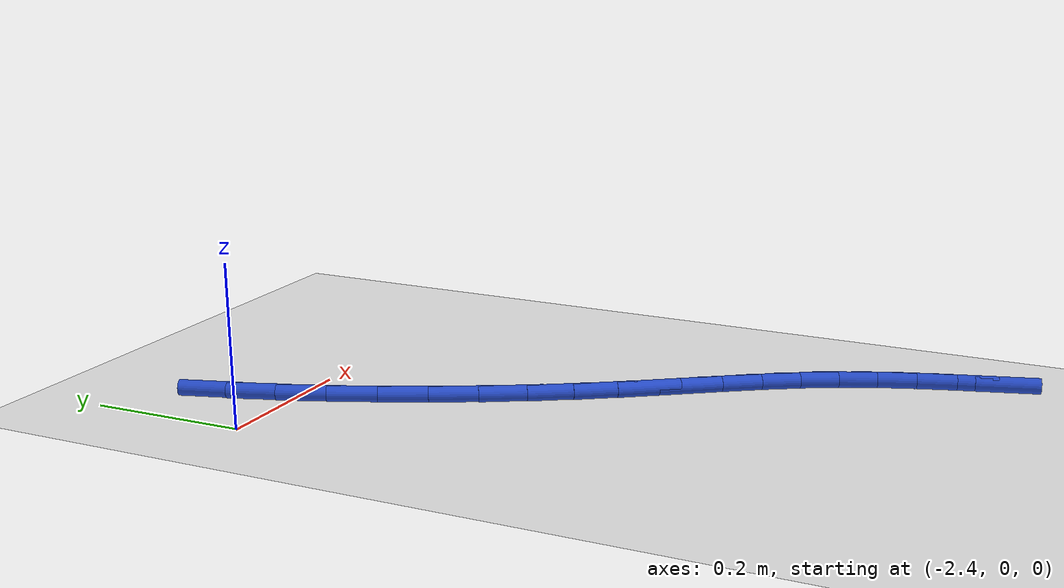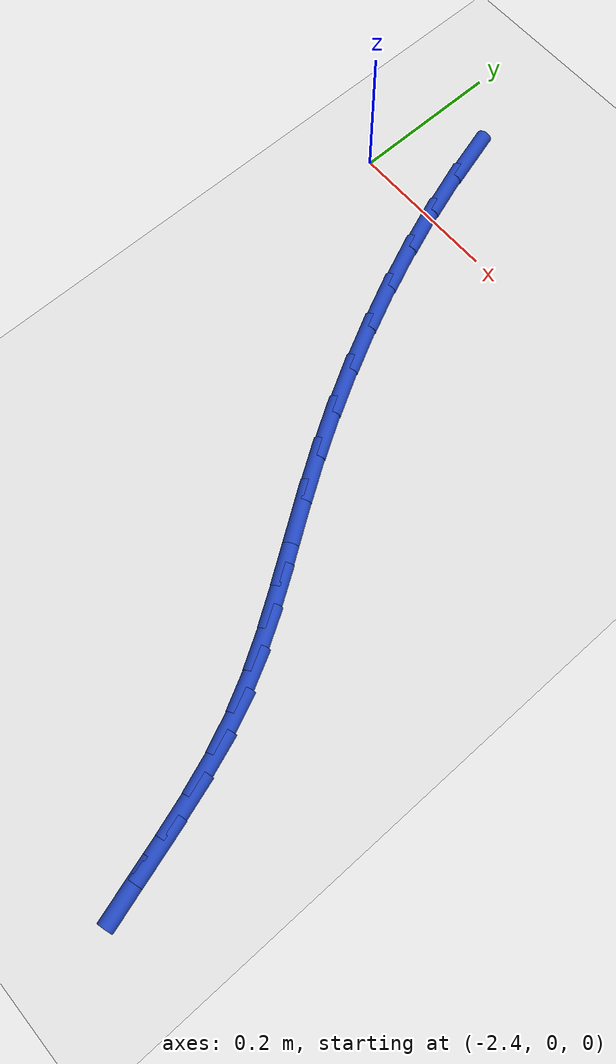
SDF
<sdf version="1.6">
 <world name="default">
  <model name="ground_plane">
   <static>1</static>
   <link name="link">
    <collision name="collision">
     <geometry><plane><normal>0 0 1</normal><size>100 100</size></plane></geometry>
     <surface><friction><ode><mu>100</mu><mu2>50</mu2></ode></friction></surface>
    </collision>
    <visual name="visual">
     <cast_shadows>0</cast_shadows>
     <geometry><plane><normal>0 0 1</normal><size>100 100</size></plane></geometry>
     <material>
      <script><uri>file://media/materials/scripts/gazebo.material</uri><name>Gazebo/WhiteGlow</name></script>
     </material>
    </visual>
   </link>
  </model>
  <model name="line">
   <link name="link_78">
    <pose>-2.315992216801766 0.09763971651295889 0.01 0 1.57 -1.282649880915142</pose>
    <collision name="collision">
     <geometry><cylinder><radius>0.01</radius><length>0.08</length></cylinder></geometry>
    </collision>
    <visual name="visual">
     <material>
      <script><name>Gazebo/Blue</name><uri>file://media/materials/scripts/gazebo.material</uri></script>
     </material>
     <geometry><cylinder><radius>0.01</radius><length>0.08</length></cylinder></geometry>
    </visual>
   </link>
   <link name="link_79">
    <pose>-2.2985466977391553 0.03878075402477239 0.01 0 1.57 -1.2389794649873294</pose>
    <collision name="collision">
     <geometry><cylinder><radius>0.01</radius><length>0.08</length></cylinder></geometry>
    </collision>
    <visual name="visual">
     <material>
      <script><name>Gazebo/Blue</name><uri>file://media/materials/scripts/gazebo.material</uri></script>
     </material>
     <geometry><cylinder><radius>0.01</radius><length>0.08</length></cylinder></geometry>
    </visual>
   </link>
   <link name="link_80">
    <pose>-2.278259995821694 -0.020097027060395928 0.01 0 1.57 -1.1991921112278094</pose>
    <collision name="collision">
     <geometry><cylinder><radius>0.01</radius><length>0.08</length></cylinder></geometry>
    </collision>
    <visual name="visual">
     <material>
      <script><name>Gazebo/Blue</name><uri>file://media/materials/scripts/gazebo.material</uri></script>
     </material>
     <geometry><cylinder><radius>0.01</radius><length>0.08</length></cylinder></geometry>
    </visual>
   </link>
   <link name="link_81">
    <pose>-2.2555002795911108 -0.07849872128670919 0.01 0 1.57 -1.1622121600459072</pose>
    <collision name="collision">
     <geometry><cylinder><radius>0.01</radius><length>0.08</length></cylinder></geometry>
    </collision>
    <visual name="visual">
     <material>
      <script><name>Gazebo/Blue</name><uri>file://media/materials/scripts/gazebo.material</uri></script>
     </material>
     <geometry><cylinder><radius>0.01</radius><length>0.08</length></cylinder></geometry>
    </visual>
   </link>
   <link name="link_82">
    <pose>-2.230635717589138 -0.13592942319832751 0.01 0 1.57 -1.1270862241740904</pose>
    <collision name="collision">
     <geometry><cylinder><radius>0.01</radius><length>0.08</length></cylinder></geometry>
    </collision>
    <visual name="visual">
     <material>
      <script><name>Gazebo/Blue</name><uri>file://media/materials/scripts/gazebo.material</uri></script>
     </material>
     <geometry><cylinder><radius>0.01</radius><length>0.08</length></cylinder></geometry>
    </visual>
   </link>
   <link name="link_83">
    <pose>-2.2040344783575043 -0.1918942273394108 0.01 0 1.57 -1.0929157698981213</pose>
    <collision name="collision">
     <geometry><cylinder><radius>0.01</radius><length>0.08</length></cylinder></geometry>
    </collision>
    <visual name="visual">
     <material>
      <script><name>Gazebo/Blue</name><uri>file://media/materials/scripts/gazebo.material</uri></script>
     </material>
     <geometry><cylinder><radius>0.01</radius><length>0.08</length></cylinder></geometry>
    </visual>
   </link>
   <link name="link_84">
    <pose>-2.176064730437942 -0.24589822825412228 0.01 0 1.57 -1.0587875387089907</pose>
    <collision name="collision">
     <geometry><cylinder><radius>0.01</radius><length>0.08</length></cylinder></geometry>
    </collision>
    <visual name="visual">
     <material>
      <script><name>Gazebo/Blue</name><uri>file://media/materials/scripts/gazebo.material</uri></script>
     </material>
     <geometry><cylinder><radius>0.01</radius><length>0.08</length></cylinder></geometry>
    </visual>
   </link>
   <link name="link_85">
    <pose>-2.1470946423721804 -0.29744652048662107 0.01 0 1.57 -1.023728122854892</pose>
    <collision name="collision">
     <geometry><cylinder><radius>0.01</radius><length>0.08</length></cylinder></geometry>
    </collision>
    <visual name="visual">
     <material>
      <script><name>Gazebo/Blue</name><uri>file://media/materials/scripts/gazebo.material</uri></script>
     </material>
     <geometry><cylinder><radius>0.01</radius><length>0.08</length></cylinder></geometry>
    </visual>
   </link>
   <link name="link_86">
    <pose>-2.117492867569388 -0.34604743245702063 0.01 0 1.57 -0.9917924505949886</pose>
    <collision name="collision">
     <geometry><cylinder><radius>0.01</radius><length>0.08</length></cylinder></geometry>
    </collision>
    <visual name="visual">
     <material>
      <script><name>Gazebo/Blue</name><uri>file://media/materials/scripts/gazebo.material</uri></script>
     </material>
     <geometry><cylinder><radius>0.01</radius><length>0.08</length></cylinder></geometry>
    </visual>
   </link>
   <link name="link_87">
    <pose>-2.0876915712131496 -0.3916328912522365 0.01 0 1.57 -0.974098748056014</pose>
    <collision name="collision">
     <geometry><cylinder><radius>0.01</radius><length>0.08</length></cylinder></geometry>
    </collision>
    <visual name="visual">
     <material>
      <script><name>Gazebo/Blue</name><uri>file://media/materials/scripts/gazebo.material</uri></script>
     </material>
     <geometry><cylinder><radius>0.01</radius><length>0.08</length></cylinder></geometry>
    </visual>
   </link>
   <link name="link_88">
    <pose>-2.0582489623171987 -0.4349754869527118 0.01 0 1.57 -0.9741045089661325</pose>
    <collision name="collision">
     <geometry><cylinder><radius>0.01</radius><length>0.08</length></cylinder></geometry>
    </collision>
    <visual name="visual">
     <material>
      <script><name>Gazebo/Blue</name><uri>file://media/materials/scripts/gazebo.material</uri></script>
     </material>
     <geometry><cylinder><radius>0.01</radius><length>0.08</length></cylinder></geometry>
    </visual>
   </link>
   <link name="link_89">
    <pose>-2.0297381148047204 -0.4769469527645005 0.01 0 1.57 -0.9935881295561417</pose>
    <collision name="collision">
     <geometry><cylinder><radius>0.01</radius><length>0.08</length></cylinder></geometry>
    </collision>
    <visual name="visual">
     <material>
      <script><name>Gazebo/Blue</name><uri>file://media/materials/scripts/gazebo.material</uri></script>
     </material>
     <geometry><cylinder><radius>0.01</radius><length>0.08</length></cylinder></geometry>
    </visual>
   </link>
   <link name="link_90">
    <pose>-2.0027321025989053 -0.5184190218936544 0.01 0 1.57 -1.0335200632097168</pose>
    <collision name="collision">
     <geometry><cylinder><radius>0.01</radius><length>0.08</length></cylinder></geometry>
    </collision>
    <visual name="visual">
     <material>
      <script><name>Gazebo/Blue</name><uri>file://media/materials/scripts/gazebo.material</uri></script>
     </material>
     <geometry><cylinder><radius>0.01</radius><length>0.08</length></cylinder></geometry>
    </visual>
   </link>
   <link name="link_91">
    <pose>-1.9778039996229417 -0.560263427546225 0.01 0 1.57 -1.0936344714262987</pose>
    <collision name="collision">
     <geometry><cylinder><radius>0.01</radius><length>0.08</length></cylinder></geometry>
    </collision>
    <visual name="visual">
     <material>
      <script><name>Gazebo/Blue</name><uri>file://media/materials/scripts/gazebo.material</uri></script>
     </material>
     <geometry><cylinder><radius>0.01</radius><length>0.08</length></cylinder></geometry>
    </visual>
   </link>
   <link name="link_92">
    <pose>-1.955526879800019 -0.6033519029282669 0.01 0 1.57 -1.1687638068294466</pose>
    <collision name="collision">
     <geometry><cylinder><radius>0.01</radius><length>0.08</length></cylinder></geometry>
    </collision>
    <visual name="visual">
     <material>
      <script><name>Gazebo/Blue</name><uri>file://media/materials/scripts/gazebo.material</uri></script>
     </material>
     <geometry><cylinder><radius>0.01</radius><length>0.08</length></cylinder></geometry>
    </visual>
   </link>
   <link name="link_93">
    <pose>-1.936353764938909 -0.6484448359256604 0.01 0 1.57 -1.2318171107914921</pose>
    <collision name="collision">
     <geometry><cylinder><radius>0.01</radius><length>0.08</length></cylinder></geometry>
    </collision>
    <visual name="visual">
     <material>
      <script><name>Gazebo/Blue</name><uri>file://media/materials/scripts/gazebo.material</uri></script>
     </material>
     <geometry><cylinder><radius>0.01</radius><length>0.08</length></cylinder></geometry>
    </visual>
   </link>
   <link name="link_94">
    <pose>-1.9197896653956894 -0.6954233576178681 0.01 0 1.57 -1.2717337638495754</pose>
    <collision name="collision">
     <geometry><cylinder><radius>0.01</radius><length>0.08</length></cylinder></geometry>
    </collision>
    <visual name="visual">
     <material>
      <script><name>Gazebo/Blue</name><uri>file://media/materials/scripts/gazebo.material</uri></script>
     </material>
     <geometry><cylinder><radius>0.01</radius><length>0.08</length></cylinder></geometry>
    </visual>
   </link>
   <link name="link_95">
    <pose>-1.9048896961175226 -0.7437513323948597 0.01 0 1.57 -1.2897933882129764</pose>
    <collision name="collision">
     <geometry><cylinder><radius>0.01</radius><length>0.08</length></cylinder></geometry>
    </collision>
    <visual name="visual">
     <material>
      <script><name>Gazebo/Blue</name><uri>file://media/materials/scripts/gazebo.material</uri></script>
     </material>
     <geometry><cylinder><radius>0.01</radius><length>0.08</length></cylinder></geometry>
    </visual>
   </link>
   <link name="link_96">
    <pose>-1.8907062557185923 -0.7928901053160055 0.01 0 1.57 -1.286946343406752</pose>
    <collision name="collision">
     <geometry><cylinder><radius>0.01</radius><length>0.08</length></cylinder></geometry>
    </collision>
    <visual name="visual">
     <material>
      <script><name>Gazebo/Blue</name><uri>file://media/materials/scripts/gazebo.material</uri></script>
     </material>
     <geometry><cylinder><radius>0.01</radius><length>0.08</length></cylinder></geometry>
    </visual>
   </link>
  </model>
 </world>
</sdf>
